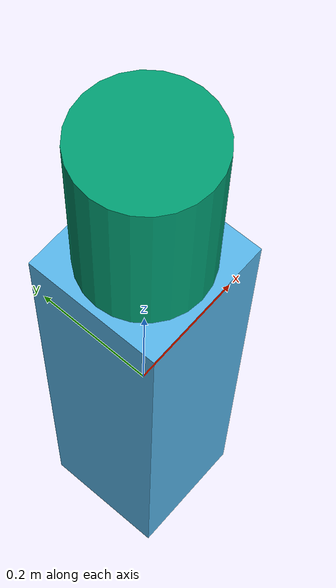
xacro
<?xml version="1.0" ?>

<robot name="joebot" xmlns:xacro="http://www.ros.org/wiki/xacro">
	<link name="world" />
	<joint name="fixed" type="fixed">
		<parent link="world" />
		<child link="base_link" />
	</joint>

	<link name="base_link">
		<inertial>
			<mass value="1000" />
			<origin xyz="0 0 0" rpy="0 0 0" />
			<inertia ixx="1" ixy="0" ixz="0" iyy="1" iyz="0" izz="1" />
		</inertial>

		<collision>
			<origin xyz="0 0 0" rpy="0 0 0" />
			<geometry>
				<box size="0.2 0.2 0.75" />
			</geometry>
		</collision>

		<visual>
			<origin xyz="0 0 0" rpy="0 0 0" />
			<geometry>
				<box size="0.2 0.2 0.75" />
			</geometry>
		</visual>
	</link>

	<joint name="base_link__link_1" type="continuous">
		<axis xyz="0 0 1" />
		<limit effort="10.0" velocity="0.5" />
		<origin xyz="0 0 0.375" rpy="0 0 0" />
		<parent link="base_link" />
		<child link="link_1" />
	</joint>

	<transmission name="trans_base_link__link_1">
		<type>transmission_interface/SimpleTransmission</type>
		<joint name="base_link__link_1">
			<hardwareInterface>hardware_interface/VelocityJointInterface</hardwareInterface>
		</joint>
		<actuator name="motor_base_link__link_1">
			<hardwareInterface>hardware_interface/VelocityJointInterface</hardwareInterface>
			<mechanicalReduction>1</mechanicalReduction>
		</actuator>
	</transmission>

	<link name="link_1">
		<inertial>
			<mass value="1" />
			<origin xyz="0 0 0" rpy="0 0 0" />
			<inertia ixx="1" ixy="0" ixz="0" iyy="1" iyz="0" izz="1" />
		</inertial>

		<collision>
			<origin xyz="0 0 0.125" rpy="0 0 0" />
			<geometry>
				<cylinder radius="0.09" length="0.25" />
			</geometry>
		</collision>

		<visual>
			<origin xyz="0 0 0.125" rpy="0 0 0" />
			<geometry>
				<cylinder radius="0.09" length="0.25" />
			</geometry>
		</visual>
	</link>

	<gazebo reference="link_1">
		<sensor type="camera" name="camera1">
			<pose>0.09 0 0.125 0 -0 0</pose>
			<camera name='__default__'>
				<horizontal_fov>0.01</horizontal_fov>
				<image>
					<width>320</width>
					<height>240</height>
				</image>
				<clip>
					<near>0.1</near>
					<far>100</far>
				</clip>
			</camera>

			<plugin name="gazebo_light_sensor_plugin" filename="libgazebo_light_sensor_plugin.so">
				<cameraName>camera</cameraName>
				<alwaysOn>true</alwaysOn>
				<updateRate>1000</updateRate>
				<imageTopicName>rgb/image_raw</imageTopicName>
				<depthImageTopicName>depth/image_raw</depthImageTopicName>
				<pointCloudTopicName>depth/points</pointCloudTopicName>
				<cameraInfoTopicName>rgb/camera_info</cameraInfoTopicName>
				<depthImageCameraInfoTopicName>depth/camera_info</depthImageCameraInfoTopicName>
				<frameName>camera_depth_optical_frame</frameName>
				<baseline>0.1</baseline>
				<distortion_k1>0.0</distortion_k1>
				<distortion_k2>0.0</distortion_k2>
				<distortion_k3>0.0</distortion_k3>
				<distortion_t1>0.0</distortion_t1>
				<distortion_t2>0.0</distortion_t2>
				<pointCloudCutoff>0.4</pointCloudCutoff>
				<robotNamespace>/</robotNamespace>
			</plugin>

			<visualize>true</visualize>
		</sensor>
	</gazebo>

	<gazebo>
		<plugin name="gazebo_ros_control" filename="libgazebo_ros_control.so">
		</plugin>
	</gazebo>
</robot>
